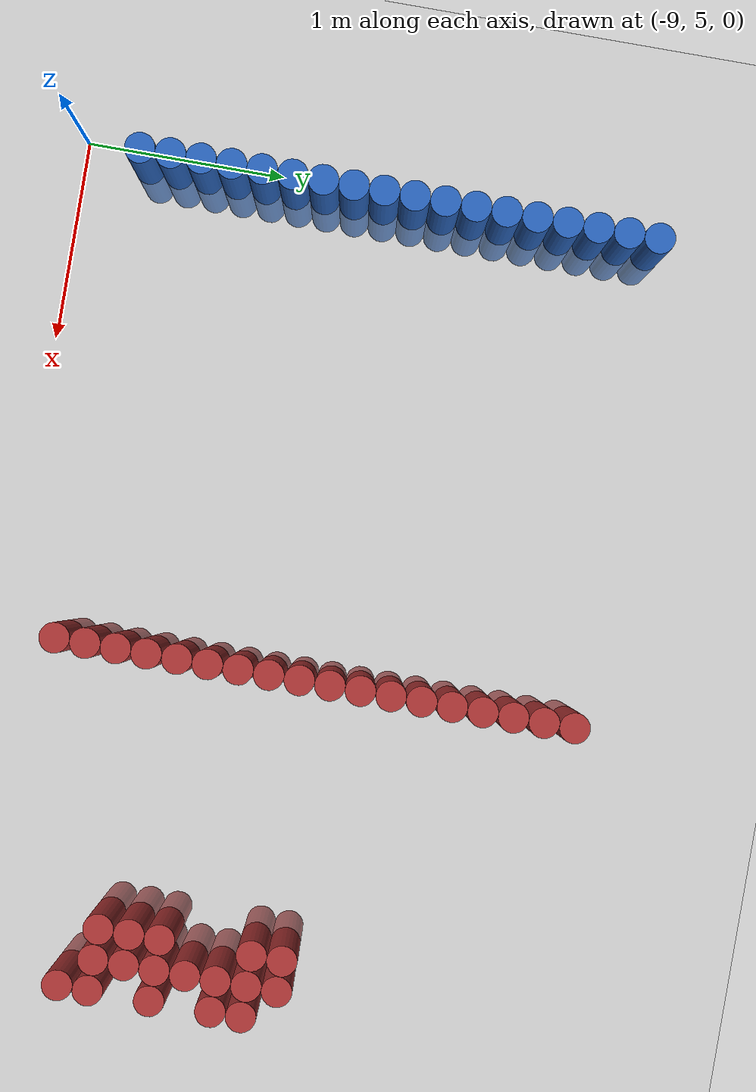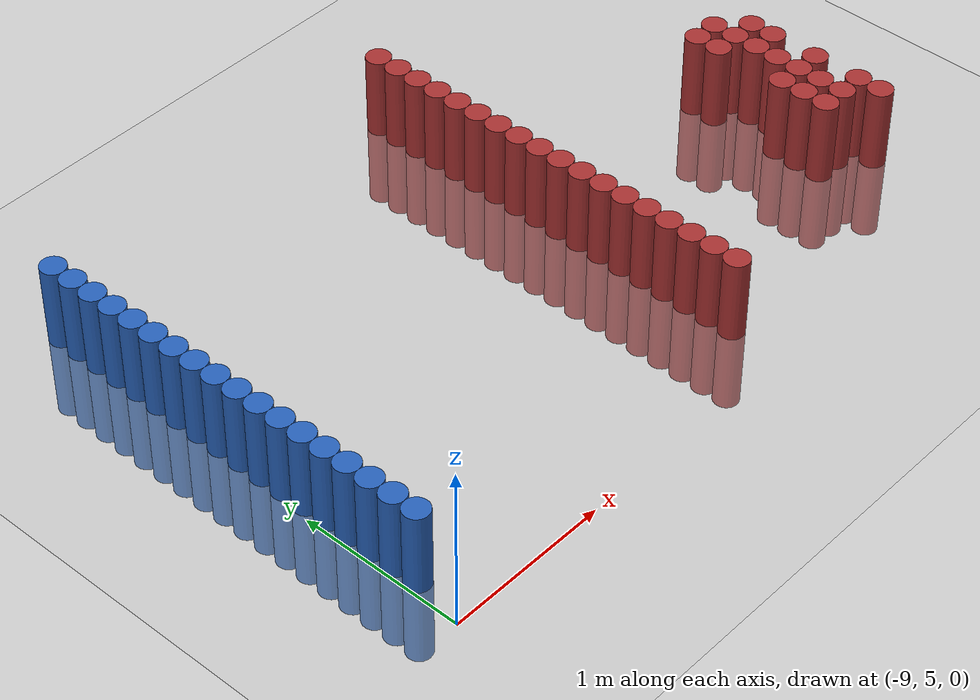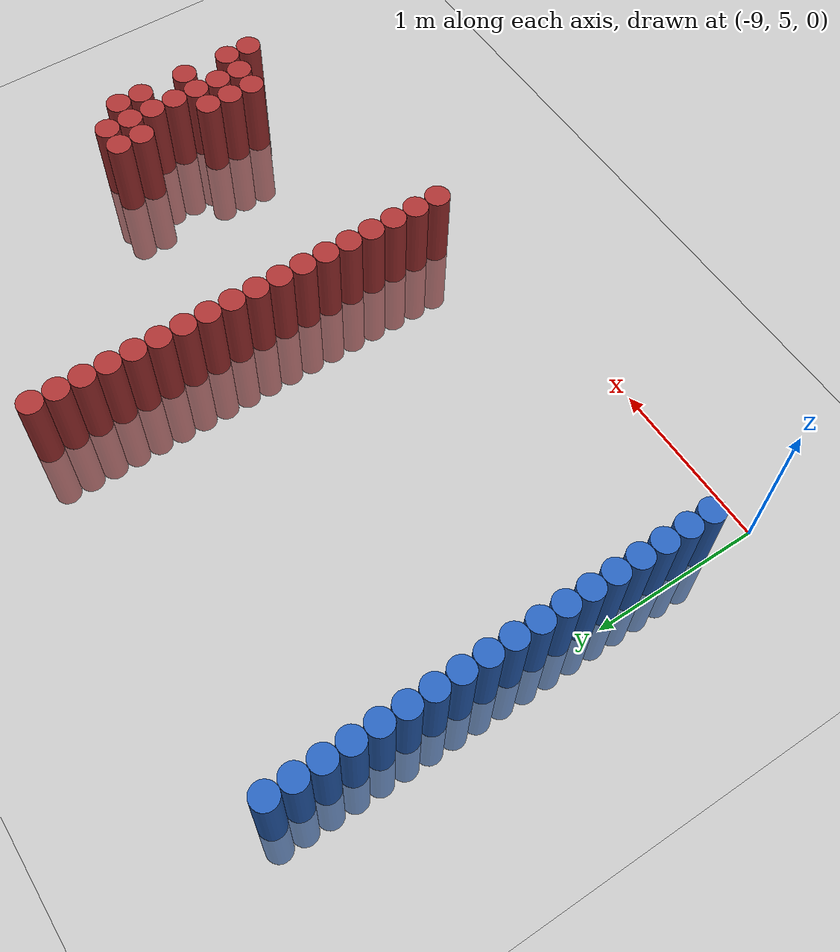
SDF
<sdf version="1.6">
 <world name="default">
  <model name="ground_plane">
   <static>1</static>
   <link name="link">
    <collision name="collision">
     <geometry><plane><normal>0 0 1</normal><size>100 100</size></plane></geometry>
     <surface><friction><ode><mu>100</mu><mu2>50</mu2></ode></friction></surface>
    </collision>
    <visual name="visual">
     <cast_shadows>0</cast_shadows>
     <geometry><plane><normal>0 0 1</normal><size>100 100</size></plane></geometry>
     <material>
      <script><uri>file://media/materials/scripts/gazebo.material</uri><name>Gazebo/Grey</name></script>
     </material>
    </visual>
   </link>
  </model>
  <model name="unit_cylinder_126">
   <static>1</static>
   <pose>-8.925000 5.325000 0.000000 0.000000 0.000000 0.000000</pose>
   <link name="link">
    <inertial>
     <mass>1</mass>
     <inertia><ixx>0.145833</ixx><ixy>0</ixy><ixz>0</ixz><iyy>0.145833</iyy><iyz>0</iyz><izz>0.125</izz></inertia>
    </inertial>
    <collision name="collision">
     <geometry><cylinder><radius>0.075000</radius><length>1</length></cylinder></geometry>
    </collision>
    <visual name="visual">
     <geometry><cylinder><radius>0.075000</radius><length>1</length></cylinder></geometry>
     <material>
      <ambient>0.152000 0.379000 0.720000 1</ambient>
      <diffuse>0.152000 0.379000 0.720000 1</diffuse>
     </material>
     <material>
      <script><name>Gazebo/Grey</name><uri>file://media/materials/scripts/gazebo.material</uri></script>
     </material>
    </visual>
   </link>
  </model>
  <model name="unit_cylinder_127">
   <static>1</static>
   <pose>-8.925000 5.475000 0.000000 0.000000 0.000000 0.000000</pose>
   <link name="link">
    <inertial>
     <mass>1</mass>
     <inertia><ixx>0.145833</ixx><ixy>0</ixy><ixz>0</ixz><iyy>0.145833</iyy><iyz>0</iyz><izz>0.125</izz></inertia>
    </inertial>
    <collision name="collision">
     <geometry><cylinder><radius>0.075000</radius><length>1</length></cylinder></geometry>
    </collision>
    <visual name="visual">
     <geometry><cylinder><radius>0.075000</radius><length>1</length></cylinder></geometry>
     <material>
      <ambient>0.152000 0.379000 0.720000 1</ambient>
      <diffuse>0.152000 0.379000 0.720000 1</diffuse>
     </material>
     <material>
      <script><name>Gazebo/Grey</name><uri>file://media/materials/scripts/gazebo.material</uri></script>
     </material>
    </visual>
   </link>
  </model>
  <model name="unit_cylinder_128">
   <static>1</static>
   <pose>-8.925000 5.625000 0.000000 0.000000 0.000000 0.000000</pose>
   <link name="link">
    <inertial>
     <mass>1</mass>
     <inertia><ixx>0.145833</ixx><ixy>0</ixy><ixz>0</ixz><iyy>0.145833</iyy><iyz>0</iyz><izz>0.125</izz></inertia>
    </inertial>
    <collision name="collision">
     <geometry><cylinder><radius>0.075000</radius><length>1</length></cylinder></geometry>
    </collision>
    <visual name="visual">
     <geometry><cylinder><radius>0.075000</radius><length>1</length></cylinder></geometry>
     <material>
      <ambient>0.152000 0.379000 0.720000 1</ambient>
      <diffuse>0.152000 0.379000 0.720000 1</diffuse>
     </material>
     <material>
      <script><name>Gazebo/Grey</name><uri>file://media/materials/scripts/gazebo.material</uri></script>
     </material>
    </visual>
   </link>
  </model>
  <model name="unit_cylinder_129">
   <static>1</static>
   <pose>-8.925000 5.775000 0.000000 0.000000 0.000000 0.000000</pose>
   <link name="link">
    <inertial>
     <mass>1</mass>
     <inertia><ixx>0.145833</ixx><ixy>0</ixy><ixz>0</ixz><iyy>0.145833</iyy><iyz>0</iyz><izz>0.125</izz></inertia>
    </inertial>
    <collision name="collision">
     <geometry><cylinder><radius>0.075000</radius><length>1</length></cylinder></geometry>
    </collision>
    <visual name="visual">
     <geometry><cylinder><radius>0.075000</radius><length>1</length></cylinder></geometry>
     <material>
      <ambient>0.152000 0.379000 0.720000 1</ambient>
      <diffuse>0.152000 0.379000 0.720000 1</diffuse>
     </material>
     <material>
      <script><name>Gazebo/Grey</name><uri>file://media/materials/scripts/gazebo.material</uri></script>
     </material>
    </visual>
   </link>
  </model>
  <model name="unit_cylinder_130">
   <static>1</static>
   <pose>-8.925000 5.925000 0.000000 0.000000 0.000000 0.000000</pose>
   <link name="link">
    <inertial>
     <mass>1</mass>
     <inertia><ixx>0.145833</ixx><ixy>0</ixy><ixz>0</ixz><iyy>0.145833</iyy><iyz>0</iyz><izz>0.125</izz></inertia>
    </inertial>
    <collision name="collision">
     <geometry><cylinder><radius>0.075000</radius><length>1</length></cylinder></geometry>
    </collision>
    <visual name="visual">
     <geometry><cylinder><radius>0.075000</radius><length>1</length></cylinder></geometry>
     <material>
      <ambient>0.152000 0.379000 0.720000 1</ambient>
      <diffuse>0.152000 0.379000 0.720000 1</diffuse>
     </material>
     <material>
      <script><name>Gazebo/Grey</name><uri>file://media/materials/scripts/gazebo.material</uri></script>
     </material>
    </visual>
   </link>
  </model>
  <model name="unit_cylinder_131">
   <static>1</static>
   <pose>-8.925000 6.075000 0.000000 0.000000 0.000000 0.000000</pose>
   <link name="link">
    <inertial>
     <mass>1</mass>
     <inertia><ixx>0.145833</ixx><ixy>0</ixy><ixz>0</ixz><iyy>0.145833</iyy><iyz>0</iyz><izz>0.125</izz></inertia>
    </inertial>
    <collision name="collision">
     <geometry><cylinder><radius>0.075000</radius><length>1</length></cylinder></geometry>
    </collision>
    <visual name="visual">
     <geometry><cylinder><radius>0.075000</radius><length>1</length></cylinder></geometry>
     <material>
      <ambient>0.152000 0.379000 0.720000 1</ambient>
      <diffuse>0.152000 0.379000 0.720000 1</diffuse>
     </material>
     <material>
      <script><name>Gazebo/Grey</name><uri>file://media/materials/scripts/gazebo.material</uri></script>
     </material>
    </visual>
   </link>
  </model>
  <model name="unit_cylinder_132">
   <static>1</static>
   <pose>-8.925000 6.225000 0.000000 0.000000 0.000000 0.000000</pose>
   <link name="link">
    <inertial>
     <mass>1</mass>
     <inertia><ixx>0.145833</ixx><ixy>0</ixy><ixz>0</ixz><iyy>0.145833</iyy><iyz>0</iyz><izz>0.125</izz></inertia>
    </inertial>
    <collision name="collision">
     <geometry><cylinder><radius>0.075000</radius><length>1</length></cylinder></geometry>
    </collision>
    <visual name="visual">
     <geometry><cylinder><radius>0.075000</radius><length>1</length></cylinder></geometry>
     <material>
      <ambient>0.152000 0.379000 0.720000 1</ambient>
      <diffuse>0.152000 0.379000 0.720000 1</diffuse>
     </material>
     <material>
      <script><name>Gazebo/Grey</name><uri>file://media/materials/scripts/gazebo.material</uri></script>
     </material>
    </visual>
   </link>
  </model>
  <model name="unit_cylinder_133">
   <static>1</static>
   <pose>-8.925000 6.375000 0.000000 0.000000 0.000000 0.000000</pose>
   <link name="link">
    <inertial>
     <mass>1</mass>
     <inertia><ixx>0.145833</ixx><ixy>0</ixy><ixz>0</ixz><iyy>0.145833</iyy><iyz>0</iyz><izz>0.125</izz></inertia>
    </inertial>
    <collision name="collision">
     <geometry><cylinder><radius>0.075000</radius><length>1</length></cylinder></geometry>
    </collision>
    <visual name="visual">
     <geometry><cylinder><radius>0.075000</radius><length>1</length></cylinder></geometry>
     <material>
      <ambient>0.152000 0.379000 0.720000 1</ambient>
      <diffuse>0.152000 0.379000 0.720000 1</diffuse>
     </material>
     <material>
      <script><name>Gazebo/Grey</name><uri>file://media/materials/scripts/gazebo.material</uri></script>
     </material>
    </visual>
   </link>
  </model>
  <model name="unit_cylinder_134">
   <static>1</static>
   <pose>-8.925000 6.525000 0.000000 0.000000 0.000000 0.000000</pose>
   <link name="link">
    <inertial>
     <mass>1</mass>
     <inertia><ixx>0.145833</ixx><ixy>0</ixy><ixz>0</ixz><iyy>0.145833</iyy><iyz>0</iyz><izz>0.125</izz></inertia>
    </inertial>
    <collision name="collision">
     <geometry><cylinder><radius>0.075000</radius><length>1</length></cylinder></geometry>
    </collision>
    <visual name="visual">
     <geometry><cylinder><radius>0.075000</radius><length>1</length></cylinder></geometry>
     <material>
      <ambient>0.152000 0.379000 0.720000 1</ambient>
      <diffuse>0.152000 0.379000 0.720000 1</diffuse>
     </material>
     <material>
      <script><name>Gazebo/Grey</name><uri>file://media/materials/scripts/gazebo.material</uri></script>
     </material>
    </visual>
   </link>
  </model>
  <model name="unit_cylinder_135">
   <static>1</static>
   <pose>-8.925000 6.675000 0.000000 0.000000 0.000000 0.000000</pose>
   <link name="link">
    <inertial>
     <mass>1</mass>
     <inertia><ixx>0.145833</ixx><ixy>0</ixy><ixz>0</ixz><iyy>0.145833</iyy><iyz>0</iyz><izz>0.125</izz></inertia>
    </inertial>
    <collision name="collision">
     <geometry><cylinder><radius>0.075000</radius><length>1</length></cylinder></geometry>
    </collision>
    <visual name="visual">
     <geometry><cylinder><radius>0.075000</radius><length>1</length></cylinder></geometry>
     <material>
      <ambient>0.152000 0.379000 0.720000 1</ambient>
      <diffuse>0.152000 0.379000 0.720000 1</diffuse>
     </material>
     <material>
      <script><name>Gazebo/Grey</name><uri>file://media/materials/scripts/gazebo.material</uri></script>
     </material>
    </visual>
   </link>
  </model>
  <model name="unit_cylinder_136">
   <static>1</static>
   <pose>-8.925000 6.825000 0.000000 0.000000 0.000000 0.000000</pose>
   <link name="link">
    <inertial>
     <mass>1</mass>
     <inertia><ixx>0.145833</ixx><ixy>0</ixy><ixz>0</ixz><iyy>0.145833</iyy><iyz>0</iyz><izz>0.125</izz></inertia>
    </inertial>
    <collision name="collision">
     <geometry><cylinder><radius>0.075000</radius><length>1</length></cylinder></geometry>
    </collision>
    <visual name="visual">
     <geometry><cylinder><radius>0.075000</radius><length>1</length></cylinder></geometry>
     <material>
      <ambient>0.152000 0.379000 0.720000 1</ambient>
      <diffuse>0.152000 0.379000 0.720000 1</diffuse>
     </material>
     <material>
      <script><name>Gazebo/Grey</name><uri>file://media/materials/scripts/gazebo.material</uri></script>
     </material>
    </visual>
   </link>
  </model>
  <model name="unit_cylinder_137">
   <static>1</static>
   <pose>-8.925000 6.975000 0.000000 0.000000 0.000000 0.000000</pose>
   <link name="link">
    <inertial>
     <mass>1</mass>
     <inertia><ixx>0.145833</ixx><ixy>0</ixy><ixz>0</ixz><iyy>0.145833</iyy><iyz>0</iyz><izz>0.125</izz></inertia>
    </inertial>
    <collision name="collision">
     <geometry><cylinder><radius>0.075000</radius><length>1</length></cylinder></geometry>
    </collision>
    <visual name="visual">
     <geometry><cylinder><radius>0.075000</radius><length>1</length></cylinder></geometry>
     <material>
      <ambient>0.152000 0.379000 0.720000 1</ambient>
      <diffuse>0.152000 0.379000 0.720000 1</diffuse>
     </material>
     <material>
      <script><name>Gazebo/Grey</name><uri>file://media/materials/scripts/gazebo.material</uri></script>
     </material>
    </visual>
   </link>
  </model>
  <model name="unit_cylinder_138">
   <static>1</static>
   <pose>-8.925000 7.125000 0.000000 0.000000 0.000000 0.000000</pose>
   <link name="link">
    <inertial>
     <mass>1</mass>
     <inertia><ixx>0.145833</ixx><ixy>0</ixy><ixz>0</ixz><iyy>0.145833</iyy><iyz>0</iyz><izz>0.125</izz></inertia>
    </inertial>
    <collision name="collision">
     <geometry><cylinder><radius>0.075000</radius><length>1</length></cylinder></geometry>
    </collision>
    <visual name="visual">
     <geometry><cylinder><radius>0.075000</radius><length>1</length></cylinder></geometry>
     <material>
      <ambient>0.152000 0.379000 0.720000 1</ambient>
      <diffuse>0.152000 0.379000 0.720000 1</diffuse>
     </material>
     <material>
      <script><name>Gazebo/Grey</name><uri>file://media/materials/scripts/gazebo.material</uri></script>
     </material>
    </visual>
   </link>
  </model>
  <model name="unit_cylinder_139">
   <static>1</static>
   <pose>-8.925000 7.275000 0.000000 0.000000 0.000000 0.000000</pose>
   <link name="link">
    <inertial>
     <mass>1</mass>
     <inertia><ixx>0.145833</ixx><ixy>0</ixy><ixz>0</ixz><iyy>0.145833</iyy><iyz>0</iyz><izz>0.125</izz></inertia>
    </inertial>
    <collision name="collision">
     <geometry><cylinder><radius>0.075000</radius><length>1</length></cylinder></geometry>
    </collision>
    <visual name="visual">
     <geometry><cylinder><radius>0.075000</radius><length>1</length></cylinder></geometry>
     <material>
      <ambient>0.152000 0.379000 0.720000 1</ambient>
      <diffuse>0.152000 0.379000 0.720000 1</diffuse>
     </material>
     <material>
      <script><name>Gazebo/Grey</name><uri>file://media/materials/scripts/gazebo.material</uri></script>
     </material>
    </visual>
   </link>
  </model>
  <model name="unit_cylinder_140">
   <static>1</static>
   <pose>-8.925000 7.425000 0.000000 0.000000 0.000000 0.000000</pose>
   <link name="link">
    <inertial>
     <mass>1</mass>
     <inertia><ixx>0.145833</ixx><ixy>0</ixy><ixz>0</ixz><iyy>0.145833</iyy><iyz>0</iyz><izz>0.125</izz></inertia>
    </inertial>
    <collision name="collision">
     <geometry><cylinder><radius>0.075000</radius><length>1</length></cylinder></geometry>
    </collision>
    <visual name="visual">
     <geometry><cylinder><radius>0.075000</radius><length>1</length></cylinder></geometry>
     <material>
      <ambient>0.152000 0.379000 0.720000 1</ambient>
      <diffuse>0.152000 0.379000 0.720000 1</diffuse>
     </material>
     <material>
      <script><name>Gazebo/Grey</name><uri>file://media/materials/scripts/gazebo.material</uri></script>
     </material>
    </visual>
   </link>
  </model>
  <model name="unit_cylinder_141">
   <static>1</static>
   <pose>-8.925000 7.575000 0.000000 0.000000 0.000000 0.000000</pose>
   <link name="link">
    <inertial>
     <mass>1</mass>
     <inertia><ixx>0.145833</ixx><ixy>0</ixy><ixz>0</ixz><iyy>0.145833</iyy><iyz>0</iyz><izz>0.125</izz></inertia>
    </inertial>
    <collision name="collision">
     <geometry><cylinder><radius>0.075000</radius><length>1</length></cylinder></geometry>
    </collision>
    <visual name="visual">
     <geometry><cylinder><radius>0.075000</radius><length>1</length></cylinder></geometry>
     <material>
      <ambient>0.152000 0.379000 0.720000 1</ambient>
      <diffuse>0.152000 0.379000 0.720000 1</diffuse>
     </material>
     <material>
      <script><name>Gazebo/Grey</name><uri>file://media/materials/scripts/gazebo.material</uri></script>
     </material>
    </visual>
   </link>
  </model>
  <model name="unit_cylinder_142">
   <static>1</static>
   <pose>-8.925000 7.725000 0.000000 0.000000 0.000000 0.000000</pose>
   <link name="link">
    <inertial>
     <mass>1</mass>
     <inertia><ixx>0.145833</ixx><ixy>0</ixy><ixz>0</ixz><iyy>0.145833</iyy><iyz>0</iyz><izz>0.125</izz></inertia>
    </inertial>
    <collision name="collision">
     <geometry><cylinder><radius>0.075000</radius><length>1</length></cylinder></geometry>
    </collision>
    <visual name="visual">
     <geometry><cylinder><radius>0.075000</radius><length>1</length></cylinder></geometry>
     <material>
      <ambient>0.152000 0.379000 0.720000 1</ambient>
      <diffuse>0.152000 0.379000 0.720000 1</diffuse>
     </material>
     <material>
      <script><name>Gazebo/Grey</name><uri>file://media/materials/scripts/gazebo.material</uri></script>
     </material>
    </visual>
   </link>
  </model>
  <model name="unit_cylinder_143">
   <static>1</static>
   <pose>-8.925000 7.875000 0.000000 0.000000 0.000000 0.000000</pose>
   <link name="link">
    <inertial>
     <mass>1</mass>
     <inertia><ixx>0.145833</ixx><ixy>0</ixy><ixz>0</ixz><iyy>0.145833</iyy><iyz>0</iyz><izz>0.125</izz></inertia>
    </inertial>
    <collision name="collision">
     <geometry><cylinder><radius>0.075000</radius><length>1</length></cylinder></geometry>
    </collision>
    <visual name="visual">
     <geometry><cylinder><radius>0.075000</radius><length>1</length></cylinder></geometry>
     <material>
      <ambient>0.152000 0.379000 0.720000 1</ambient>
      <diffuse>0.152000 0.379000 0.720000 1</diffuse>
     </material>
     <material>
      <script><name>Gazebo/Grey</name><uri>file://media/materials/scripts/gazebo.material</uri></script>
     </material>
    </visual>
   </link>
  </model>
  <model name="unit_cylinder_186">
   <static>1</static>
   <pose>-6.525000 5.325000 0.000000 0.000000 0.000000 0.000000</pose>
   <link name="link">
    <inertial>
     <mass>1</mass>
     <inertia><ixx>0.145833</ixx><ixy>0</ixy><ixz>0</ixz><iyy>0.145833</iyy><iyz>0</iyz><izz>0.125</izz></inertia>
    </inertial>
    <collision name="collision">
     <geometry><cylinder><radius>0.075000</radius><length>1</length></cylinder></geometry>
    </collision>
    <visual name="visual">
     <geometry><cylinder><radius>0.075000</radius><length>1</length></cylinder></geometry>
     <material>
      <ambient>0.648000 0.192000 0.192000 1</ambient>
      <diffuse>0.648000 0.192000 0.192000 1</diffuse>
     </material>
     <material>
      <script><name>Gazebo/Grey</name><uri>file://media/materials/scripts/gazebo.material</uri></script>
     </material>
    </visual>
   </link>
  </model>
  <model name="unit_cylinder_187">
   <static>1</static>
   <pose>-6.525000 5.475000 0.000000 0.000000 0.000000 0.000000</pose>
   <link name="link">
    <inertial>
     <mass>1</mass>
     <inertia><ixx>0.145833</ixx><ixy>0</ixy><ixz>0</ixz><iyy>0.145833</iyy><iyz>0</iyz><izz>0.125</izz></inertia>
    </inertial>
    <collision name="collision">
     <geometry><cylinder><radius>0.075000</radius><length>1</length></cylinder></geometry>
    </collision>
    <visual name="visual">
     <geometry><cylinder><radius>0.075000</radius><length>1</length></cylinder></geometry>
     <material>
      <ambient>0.648000 0.192000 0.192000 1</ambient>
      <diffuse>0.648000 0.192000 0.192000 1</diffuse>
     </material>
     <material>
      <script><name>Gazebo/Grey</name><uri>file://media/materials/scripts/gazebo.material</uri></script>
     </material>
    </visual>
   </link>
  </model>
  <model name="unit_cylinder_188">
   <static>1</static>
   <pose>-6.525000 5.625000 0.000000 0.000000 0.000000 0.000000</pose>
   <link name="link">
    <inertial>
     <mass>1</mass>
     <inertia><ixx>0.145833</ixx><ixy>0</ixy><ixz>0</ixz><iyy>0.145833</iyy><iyz>0</iyz><izz>0.125</izz></inertia>
    </inertial>
    <collision name="collision">
     <geometry><cylinder><radius>0.075000</radius><length>1</length></cylinder></geometry>
    </collision>
    <visual name="visual">
     <geometry><cylinder><radius>0.075000</radius><length>1</length></cylinder></geometry>
     <material>
      <ambient>0.648000 0.192000 0.192000 1</ambient>
      <diffuse>0.648000 0.192000 0.192000 1</diffuse>
     </material>
     <material>
      <script><name>Gazebo/Grey</name><uri>file://media/materials/scripts/gazebo.material</uri></script>
     </material>
    </visual>
   </link>
  </model>
  <model name="unit_cylinder_189">
   <static>1</static>
   <pose>-6.525000 5.775000 0.000000 0.000000 0.000000 0.000000</pose>
   <link name="link">
    <inertial>
     <mass>1</mass>
     <inertia><ixx>0.145833</ixx><ixy>0</ixy><ixz>0</ixz><iyy>0.145833</iyy><iyz>0</iyz><izz>0.125</izz></inertia>
    </inertial>
    <collision name="collision">
     <geometry><cylinder><radius>0.075000</radius><length>1</length></cylinder></geometry>
    </collision>
    <visual name="visual">
     <geometry><cylinder><radius>0.075000</radius><length>1</length></cylinder></geometry>
     <material>
      <ambient>0.648000 0.192000 0.192000 1</ambient>
      <diffuse>0.648000 0.192000 0.192000 1</diffuse>
     </material>
     <material>
      <script><name>Gazebo/Grey</name><uri>file://media/materials/scripts/gazebo.material</uri></script>
     </material>
    </visual>
   </link>
  </model>
  <model name="unit_cylinder_190">
   <static>1</static>
   <pose>-6.525000 5.925000 0.000000 0.000000 0.000000 0.000000</pose>
   <link name="link">
    <inertial>
     <mass>1</mass>
     <inertia><ixx>0.145833</ixx><ixy>0</ixy><ixz>0</ixz><iyy>0.145833</iyy><iyz>0</iyz><izz>0.125</izz></inertia>
    </inertial>
    <collision name="collision">
     <geometry><cylinder><radius>0.075000</radius><length>1</length></cylinder></geometry>
    </collision>
    <visual name="visual">
     <geometry><cylinder><radius>0.075000</radius><length>1</length></cylinder></geometry>
     <material>
      <ambient>0.648000 0.192000 0.192000 1</ambient>
      <diffuse>0.648000 0.192000 0.192000 1</diffuse>
     </material>
     <material>
      <script><name>Gazebo/Grey</name><uri>file://media/materials/scripts/gazebo.material</uri></script>
     </material>
    </visual>
   </link>
  </model>
  <model name="unit_cylinder_191">
   <static>1</static>
   <pose>-6.525000 6.075000 0.000000 0.000000 0.000000 0.000000</pose>
   <link name="link">
    <inertial>
     <mass>1</mass>
     <inertia><ixx>0.145833</ixx><ixy>0</ixy><ixz>0</ixz><iyy>0.145833</iyy><iyz>0</iyz><izz>0.125</izz></inertia>
    </inertial>
    <collision name="collision">
     <geometry><cylinder><radius>0.075000</radius><length>1</length></cylinder></geometry>
    </collision>
    <visual name="visual">
     <geometry><cylinder><radius>0.075000</radius><length>1</length></cylinder></geometry>
     <material>
      <ambient>0.648000 0.192000 0.192000 1</ambient>
      <diffuse>0.648000 0.192000 0.192000 1</diffuse>
     </material>
     <material>
      <script><name>Gazebo/Grey</name><uri>file://media/materials/scripts/gazebo.material</uri></script>
     </material>
    </visual>
   </link>
  </model>
  <model name="unit_cylinder_192">
   <static>1</static>
   <pose>-6.525000 6.225000 0.000000 0.000000 0.000000 0.000000</pose>
   <link name="link">
    <inertial>
     <mass>1</mass>
     <inertia><ixx>0.145833</ixx><ixy>0</ixy><ixz>0</ixz><iyy>0.145833</iyy><iyz>0</iyz><izz>0.125</izz></inertia>
    </inertial>
    <collision name="collision">
     <geometry><cylinder><radius>0.075000</radius><length>1</length></cylinder></geometry>
    </collision>
    <visual name="visual">
     <geometry><cylinder><radius>0.075000</radius><length>1</length></cylinder></geometry>
     <material>
      <ambient>0.648000 0.192000 0.192000 1</ambient>
      <diffuse>0.648000 0.192000 0.192000 1</diffuse>
     </material>
     <material>
      <script><name>Gazebo/Grey</name><uri>file://media/materials/scripts/gazebo.material</uri></script>
     </material>
    </visual>
   </link>
  </model>
  <model name="unit_cylinder_193">
   <static>1</static>
   <pose>-6.525000 6.375000 0.000000 0.000000 0.000000 0.000000</pose>
   <link name="link">
    <inertial>
     <mass>1</mass>
     <inertia><ixx>0.145833</ixx><ixy>0</ixy><ixz>0</ixz><iyy>0.145833</iyy><iyz>0</iyz><izz>0.125</izz></inertia>
    </inertial>
    <collision name="collision">
     <geometry><cylinder><radius>0.075000</radius><length>1</length></cylinder></geometry>
    </collision>
    <visual name="visual">
     <geometry><cylinder><radius>0.075000</radius><length>1</length></cylinder></geometry>
     <material>
      <ambient>0.648000 0.192000 0.192000 1</ambient>
      <diffuse>0.648000 0.192000 0.192000 1</diffuse>
     </material>
     <material>
      <script><name>Gazebo/Grey</name><uri>file://media/materials/scripts/gazebo.material</uri></script>
     </material>
    </visual>
   </link>
  </model>
  <model name="unit_cylinder_194">
   <static>1</static>
   <pose>-6.525000 6.525000 0.000000 0.000000 0.000000 0.000000</pose>
   <link name="link">
    <inertial>
     <mass>1</mass>
     <inertia><ixx>0.145833</ixx><ixy>0</ixy><ixz>0</ixz><iyy>0.145833</iyy><iyz>0</iyz><izz>0.125</izz></inertia>
    </inertial>
    <collision name="collision">
     <geometry><cylinder><radius>0.075000</radius><length>1</length></cylinder></geometry>
    </collision>
    <visual name="visual">
     <geometry><cylinder><radius>0.075000</radius><length>1</length></cylinder></geometry>
     <material>
      <ambient>0.648000 0.192000 0.192000 1</ambient>
      <diffuse>0.648000 0.192000 0.192000 1</diffuse>
     </material>
     <material>
      <script><name>Gazebo/Grey</name><uri>file://media/materials/scripts/gazebo.material</uri></script>
     </material>
    </visual>
   </link>
  </model>
  <model name="unit_cylinder_195">
   <static>1</static>
   <pose>-6.525000 6.675000 0.000000 0.000000 0.000000 0.000000</pose>
   <link name="link">
    <inertial>
     <mass>1</mass>
     <inertia><ixx>0.145833</ixx><ixy>0</ixy><ixz>0</ixz><iyy>0.145833</iyy><iyz>0</iyz><izz>0.125</izz></inertia>
    </inertial>
    <collision name="collision">
     <geometry><cylinder><radius>0.075000</radius><length>1</length></cylinder></geometry>
    </collision>
    <visual name="visual">
     <geometry><cylinder><radius>0.075000</radius><length>1</length></cylinder></geometry>
     <material>
      <ambient>0.648000 0.192000 0.192000 1</ambient>
      <diffuse>0.648000 0.192000 0.192000 1</diffuse>
     </material>
     <material>
      <script><name>Gazebo/Grey</name><uri>file://media/materials/scripts/gazebo.material</uri></script>
     </material>
    </visual>
   </link>
  </model>
  <model name="unit_cylinder_196">
   <static>1</static>
   <pose>-6.525000 6.825000 0.000000 0.000000 0.000000 0.000000</pose>
   <link name="link">
    <inertial>
     <mass>1</mass>
     <inertia><ixx>0.145833</ixx><ixy>0</ixy><ixz>0</ixz><iyy>0.145833</iyy><iyz>0</iyz><izz>0.125</izz></inertia>
    </inertial>
    <collision name="collision">
     <geometry><cylinder><radius>0.075000</radius><length>1</length></cylinder></geometry>
    </collision>
    <visual name="visual">
     <geometry><cylinder><radius>0.075000</radius><length>1</length></cylinder></geometry>
     <material>
      <ambient>0.648000 0.192000 0.192000 1</ambient>
      <diffuse>0.648000 0.192000 0.192000 1</diffuse>
     </material>
     <material>
      <script><name>Gazebo/Grey</name><uri>file://media/materials/scripts/gazebo.material</uri></script>
     </material>
    </visual>
   </link>
  </model>
  <model name="unit_cylinder_197">
   <static>1</static>
   <pose>-6.525000 6.975000 0.000000 0.000000 0.000000 0.000000</pose>
   <link name="link">
    <inertial>
     <mass>1</mass>
     <inertia><ixx>0.145833</ixx><ixy>0</ixy><ixz>0</ixz><iyy>0.145833</iyy><iyz>0</iyz><izz>0.125</izz></inertia>
    </inertial>
    <collision name="collision">
     <geometry><cylinder><radius>0.075000</radius><length>1</length></cylinder></geometry>
    </collision>
    <visual name="visual">
     <geometry><cylinder><radius>0.075000</radius><length>1</length></cylinder></geometry>
     <material>
      <ambient>0.648000 0.192000 0.192000 1</ambient>
      <diffuse>0.648000 0.192000 0.192000 1</diffuse>
     </material>
     <material>
      <script><name>Gazebo/Grey</name><uri>file://media/materials/scripts/gazebo.material</uri></script>
     </material>
    </visual>
   </link>
  </model>
  <model name="unit_cylinder_198">
   <static>1</static>
   <pose>-6.525000 7.125000 0.000000 0.000000 0.000000 0.000000</pose>
   <link name="link">
    <inertial>
     <mass>1</mass>
     <inertia><ixx>0.145833</ixx><ixy>0</ixy><ixz>0</ixz><iyy>0.145833</iyy><iyz>0</iyz><izz>0.125</izz></inertia>
    </inertial>
    <collision name="collision">
     <geometry><cylinder><radius>0.075000</radius><length>1</length></cylinder></geometry>
    </collision>
    <visual name="visual">
     <geometry><cylinder><radius>0.075000</radius><length>1</length></cylinder></geometry>
     <material>
      <ambient>0.648000 0.192000 0.192000 1</ambient>
      <diffuse>0.648000 0.192000 0.192000 1</diffuse>
     </material>
     <material>
      <script><name>Gazebo/Grey</name><uri>file://media/materials/scripts/gazebo.material</uri></script>
     </material>
    </visual>
   </link>
  </model>
  <model name="unit_cylinder_199">
   <static>1</static>
   <pose>-6.525000 7.275000 0.000000 0.000000 0.000000 0.000000</pose>
   <link name="link">
    <inertial>
     <mass>1</mass>
     <inertia><ixx>0.145833</ixx><ixy>0</ixy><ixz>0</ixz><iyy>0.145833</iyy><iyz>0</iyz><izz>0.125</izz></inertia>
    </inertial>
    <collision name="collision">
     <geometry><cylinder><radius>0.075000</radius><length>1</length></cylinder></geometry>
    </collision>
    <visual name="visual">
     <geometry><cylinder><radius>0.075000</radius><length>1</length></cylinder></geometry>
     <material>
      <ambient>0.648000 0.192000 0.192000 1</ambient>
      <diffuse>0.648000 0.192000 0.192000 1</diffuse>
     </material>
     <material>
      <script><name>Gazebo/Grey</name><uri>file://media/materials/scripts/gazebo.material</uri></script>
     </material>
    </visual>
   </link>
  </model>
  <model name="unit_cylinder_200">
   <static>1</static>
   <pose>-6.525000 7.425000 0.000000 0.000000 0.000000 0.000000</pose>
   <link name="link">
    <inertial>
     <mass>1</mass>
     <inertia><ixx>0.145833</ixx><ixy>0</ixy><ixz>0</ixz><iyy>0.145833</iyy><iyz>0</iyz><izz>0.125</izz></inertia>
    </inertial>
    <collision name="collision">
     <geometry><cylinder><radius>0.075000</radius><length>1</length></cylinder></geometry>
    </collision>
    <visual name="visual">
     <geometry><cylinder><radius>0.075000</radius><length>1</length></cylinder></geometry>
     <material>
      <ambient>0.648000 0.192000 0.192000 1</ambient>
      <diffuse>0.648000 0.192000 0.192000 1</diffuse>
     </material>
     <material>
      <script><name>Gazebo/Grey</name><uri>file://media/materials/scripts/gazebo.material</uri></script>
     </material>
    </visual>
   </link>
  </model>
  <model name="unit_cylinder_201">
   <static>1</static>
   <pose>-6.525000 7.575000 0.000000 0.000000 0.000000 0.000000</pose>
   <link name="link">
    <inertial>
     <mass>1</mass>
     <inertia><ixx>0.145833</ixx><ixy>0</ixy><ixz>0</ixz><iyy>0.145833</iyy><iyz>0</iyz><izz>0.125</izz></inertia>
    </inertial>
    <collision name="collision">
     <geometry><cylinder><radius>0.075000</radius><length>1</length></cylinder></geometry>
    </collision>
    <visual name="visual">
     <geometry><cylinder><radius>0.075000</radius><length>1</length></cylinder></geometry>
     <material>
      <ambient>0.648000 0.192000 0.192000 1</ambient>
      <diffuse>0.648000 0.192000 0.192000 1</diffuse>
     </material>
     <material>
      <script><name>Gazebo/Grey</name><uri>file://media/materials/scripts/gazebo.material</uri></script>
     </material>
    </visual>
   </link>
  </model>
  <model name="unit_cylinder_202">
   <static>1</static>
   <pose>-6.525000 7.725000 0.000000 0.000000 0.000000 0.000000</pose>
   <link name="link">
    <inertial>
     <mass>1</mass>
     <inertia><ixx>0.145833</ixx><ixy>0</ixy><ixz>0</ixz><iyy>0.145833</iyy><iyz>0</iyz><izz>0.125</izz></inertia>
    </inertial>
    <collision name="collision">
     <geometry><cylinder><radius>0.075000</radius><length>1</length></cylinder></geometry>
    </collision>
    <visual name="visual">
     <geometry><cylinder><radius>0.075000</radius><length>1</length></cylinder></geometry>
     <material>
      <ambient>0.648000 0.192000 0.192000 1</ambient>
      <diffuse>0.648000 0.192000 0.192000 1</diffuse>
     </material>
     <material>
      <script><name>Gazebo/Grey</name><uri>file://media/materials/scripts/gazebo.material</uri></script>
     </material>
    </visual>
   </link>
  </model>
  <model name="unit_cylinder_203">
   <static>1</static>
   <pose>-6.525000 7.875000 0.000000 0.000000 0.000000 0.000000</pose>
   <link name="link">
    <inertial>
     <mass>1</mass>
     <inertia><ixx>0.145833</ixx><ixy>0</ixy><ixz>0</ixz><iyy>0.145833</iyy><iyz>0</iyz><izz>0.125</izz></inertia>
    </inertial>
    <collision name="collision">
     <geometry><cylinder><radius>0.075000</radius><length>1</length></cylinder></geometry>
    </collision>
    <visual name="visual">
     <geometry><cylinder><radius>0.075000</radius><length>1</length></cylinder></geometry>
     <material>
      <ambient>0.648000 0.192000 0.192000 1</ambient>
      <diffuse>0.648000 0.192000 0.192000 1</diffuse>
     </material>
     <material>
      <script><name>Gazebo/Grey</name><uri>file://media/materials/scripts/gazebo.material</uri></script>
     </material>
    </visual>
   </link>
  </model>
  <model name="unit_cylinder_215">
   <static>1</static>
   <pose>-5.175000 5.775000 0.000000 0.000000 0.000000 0.000000</pose>
   <link name="link">
    <inertial>
     <mass>1</mass>
     <inertia><ixx>0.145833</ixx><ixy>0</ixy><ixz>0</ixz><iyy>0.145833</iyy><iyz>0</iyz><izz>0.125</izz></inertia>
    </inertial>
    <collision name="collision">
     <geometry><cylinder><radius>0.075000</radius><length>1</length></cylinder></geometry>
    </collision>
    <visual name="visual">
     <geometry><cylinder><radius>0.075000</radius><length>1</length></cylinder></geometry>
     <material>
      <ambient>0.648000 0.192000 0.192000 1</ambient>
      <diffuse>0.648000 0.192000 0.192000 1</diffuse>
     </material>
     <material>
      <script><name>Gazebo/Grey</name><uri>file://media/materials/scripts/gazebo.material</uri></script>
     </material>
    </visual>
   </link>
  </model>
  <model name="unit_cylinder_216">
   <static>1</static>
   <pose>-5.175000 5.925000 0.000000 0.000000 0.000000 0.000000</pose>
   <link name="link">
    <inertial>
     <mass>1</mass>
     <inertia><ixx>0.145833</ixx><ixy>0</ixy><ixz>0</ixz><iyy>0.145833</iyy><iyz>0</iyz><izz>0.125</izz></inertia>
    </inertial>
    <collision name="collision">
     <geometry><cylinder><radius>0.075000</radius><length>1</length></cylinder></geometry>
    </collision>
    <visual name="visual">
     <geometry><cylinder><radius>0.075000</radius><length>1</length></cylinder></geometry>
     <material>
      <ambient>0.648000 0.192000 0.192000 1</ambient>
      <diffuse>0.648000 0.192000 0.192000 1</diffuse>
     </material>
     <material>
      <script><name>Gazebo/Grey</name><uri>file://media/materials/scripts/gazebo.material</uri></script>
     </material>
    </visual>
   </link>
  </model>
  <model name="unit_cylinder_217">
   <static>1</static>
   <pose>-5.175000 6.075000 0.000000 0.000000 0.000000 0.000000</pose>
   <link name="link">
    <inertial>
     <mass>1</mass>
     <inertia><ixx>0.145833</ixx><ixy>0</ixy><ixz>0</ixz><iyy>0.145833</iyy><iyz>0</iyz><izz>0.125</izz></inertia>
    </inertial>
    <collision name="collision">
     <geometry><cylinder><radius>0.075000</radius><length>1</length></cylinder></geometry>
    </collision>
    <visual name="visual">
     <geometry><cylinder><radius>0.075000</radius><length>1</length></cylinder></geometry>
     <material>
      <ambient>0.648000 0.192000 0.192000 1</ambient>
      <diffuse>0.648000 0.192000 0.192000 1</diffuse>
     </material>
     <material>
      <script><name>Gazebo/Grey</name><uri>file://media/materials/scripts/gazebo.material</uri></script>
     </material>
    </visual>
   </link>
  </model>
  <model name="unit_cylinder_218">
   <static>1</static>
   <pose>-5.175000 6.525000 0.000000 0.000000 0.000000 0.000000</pose>
   <link name="link">
    <inertial>
     <mass>1</mass>
     <inertia><ixx>0.145833</ixx><ixy>0</ixy><ixz>0</ixz><iyy>0.145833</iyy><iyz>0</iyz><izz>0.125</izz></inertia>
    </inertial>
    <collision name="collision">
     <geometry><cylinder><radius>0.075000</radius><length>1</length></cylinder></geometry>
    </collision>
    <visual name="visual">
     <geometry><cylinder><radius>0.075000</radius><length>1</length></cylinder></geometry>
     <material>
      <ambient>0.648000 0.192000 0.192000 1</ambient>
      <diffuse>0.648000 0.192000 0.192000 1</diffuse>
     </material>
     <material>
      <script><name>Gazebo/Grey</name><uri>file://media/materials/scripts/gazebo.material</uri></script>
     </material>
    </visual>
   </link>
  </model>
  <model name="unit_cylinder_219">
   <static>1</static>
   <pose>-5.175000 6.675000 0.000000 0.000000 0.000000 0.000000</pose>
   <link name="link">
    <inertial>
     <mass>1</mass>
     <inertia><ixx>0.145833</ixx><ixy>0</ixy><ixz>0</ixz><iyy>0.145833</iyy><iyz>0</iyz><izz>0.125</izz></inertia>
    </inertial>
    <collision name="collision">
     <geometry><cylinder><radius>0.075000</radius><length>1</length></cylinder></geometry>
    </collision>
    <visual name="visual">
     <geometry><cylinder><radius>0.075000</radius><length>1</length></cylinder></geometry>
     <material>
      <ambient>0.648000 0.192000 0.192000 1</ambient>
      <diffuse>0.648000 0.192000 0.192000 1</diffuse>
     </material>
     <material>
      <script><name>Gazebo/Grey</name><uri>file://media/materials/scripts/gazebo.material</uri></script>
     </material>
    </visual>
   </link>
  </model>
  <model name="unit_cylinder_226">
   <static>1</static>
   <pose>-5.025000 5.775000 0.000000 0.000000 0.000000 0.000000</pose>
   <link name="link">
    <inertial>
     <mass>1</mass>
     <inertia><ixx>0.145833</ixx><ixy>0</ixy><ixz>0</ixz><iyy>0.145833</iyy><iyz>0</iyz><izz>0.125</izz></inertia>
    </inertial>
    <collision name="collision">
     <geometry><cylinder><radius>0.075000</radius><length>1</length></cylinder></geometry>
    </collision>
    <visual name="visual">
     <geometry><cylinder><radius>0.075000</radius><length>1</length></cylinder></geometry>
     <material>
      <ambient>0.648000 0.192000 0.192000 1</ambient>
      <diffuse>0.648000 0.192000 0.192000 1</diffuse>
     </material>
     <material>
      <script><name>Gazebo/Grey</name><uri>file://media/materials/scripts/gazebo.material</uri></script>
     </material>
    </visual>
   </link>
  </model>
  <model name="unit_cylinder_227">
   <static>1</static>
   <pose>-5.025000 5.925000 0.000000 0.000000 0.000000 0.000000</pose>
   <link name="link">
    <inertial>
     <mass>1</mass>
     <inertia><ixx>0.145833</ixx><ixy>0</ixy><ixz>0</ixz><iyy>0.145833</iyy><iyz>0</iyz><izz>0.125</izz></inertia>
    </inertial>
    <collision name="collision">
     <geometry><cylinder><radius>0.075000</radius><length>1</length></cylinder></geometry>
    </collision>
    <visual name="visual">
     <geometry><cylinder><radius>0.075000</radius><length>1</length></cylinder></geometry>
     <material>
      <ambient>0.648000 0.192000 0.192000 1</ambient>
      <diffuse>0.648000 0.192000 0.192000 1</diffuse>
     </material>
     <material>
      <script><name>Gazebo/Grey</name><uri>file://media/materials/scripts/gazebo.material</uri></script>
     </material>
    </visual>
   </link>
  </model>
  <model name="unit_cylinder_228">
   <static>1</static>
   <pose>-5.025000 6.075000 0.000000 0.000000 0.000000 0.000000</pose>
   <link name="link">
    <inertial>
     <mass>1</mass>
     <inertia><ixx>0.145833</ixx><ixy>0</ixy><ixz>0</ixz><iyy>0.145833</iyy><iyz>0</iyz><izz>0.125</izz></inertia>
    </inertial>
    <collision name="collision">
     <geometry><cylinder><radius>0.075000</radius><length>1</length></cylinder></geometry>
    </collision>
    <visual name="visual">
     <geometry><cylinder><radius>0.075000</radius><length>1</length></cylinder></geometry>
     <material>
      <ambient>0.648000 0.192000 0.192000 1</ambient>
      <diffuse>0.648000 0.192000 0.192000 1</diffuse>
     </material>
     <material>
      <script><name>Gazebo/Grey</name><uri>file://media/materials/scripts/gazebo.material</uri></script>
     </material>
    </visual>
   </link>
  </model>
  <model name="unit_cylinder_229">
   <static>1</static>
   <pose>-5.025000 6.225000 0.000000 0.000000 0.000000 0.000000</pose>
   <link name="link">
    <inertial>
     <mass>1</mass>
     <inertia><ixx>0.145833</ixx><ixy>0</ixy><ixz>0</ixz><iyy>0.145833</iyy><iyz>0</iyz><izz>0.125</izz></inertia>
    </inertial>
    <collision name="collision">
     <geometry><cylinder><radius>0.075000</radius><length>1</length></cylinder></geometry>
    </collision>
    <visual name="visual">
     <geometry><cylinder><radius>0.075000</radius><length>1</length></cylinder></geometry>
     <material>
      <ambient>0.648000 0.192000 0.192000 1</ambient>
      <diffuse>0.648000 0.192000 0.192000 1</diffuse>
     </material>
     <material>
      <script><name>Gazebo/Grey</name><uri>file://media/materials/scripts/gazebo.material</uri></script>
     </material>
    </visual>
   </link>
  </model>
  <model name="unit_cylinder_230">
   <static>1</static>
   <pose>-5.025000 6.375000 0.000000 0.000000 0.000000 0.000000</pose>
   <link name="link">
    <inertial>
     <mass>1</mass>
     <inertia><ixx>0.145833</ixx><ixy>0</ixy><ixz>0</ixz><iyy>0.145833</iyy><iyz>0</iyz><izz>0.125</izz></inertia>
    </inertial>
    <collision name="collision">
     <geometry><cylinder><radius>0.075000</radius><length>1</length></cylinder></geometry>
    </collision>
    <visual name="visual">
     <geometry><cylinder><radius>0.075000</radius><length>1</length></cylinder></geometry>
     <material>
      <ambient>0.648000 0.192000 0.192000 1</ambient>
      <diffuse>0.648000 0.192000 0.192000 1</diffuse>
     </material>
     <material>
      <script><name>Gazebo/Grey</name><uri>file://media/materials/scripts/gazebo.material</uri></script>
     </material>
    </visual>
   </link>
  </model>
  <model name="unit_cylinder_231">
   <static>1</static>
   <pose>-5.025000 6.525000 0.000000 0.000000 0.000000 0.000000</pose>
   <link name="link">
    <inertial>
     <mass>1</mass>
     <inertia><ixx>0.145833</ixx><ixy>0</ixy><ixz>0</ixz><iyy>0.145833</iyy><iyz>0</iyz><izz>0.125</izz></inertia>
    </inertial>
    <collision name="collision">
     <geometry><cylinder><radius>0.075000</radius><length>1</length></cylinder></geometry>
    </collision>
    <visual name="visual">
     <geometry><cylinder><radius>0.075000</radius><length>1</length></cylinder></geometry>
     <material>
      <ambient>0.648000 0.192000 0.192000 1</ambient>
      <diffuse>0.648000 0.192000 0.192000 1</diffuse>
     </material>
     <material>
      <script><name>Gazebo/Grey</name><uri>file://media/materials/scripts/gazebo.material</uri></script>
     </material>
    </visual>
   </link>
  </model>
  <model name="unit_cylinder_232">
   <static>1</static>
   <pose>-5.025000 6.675000 0.000000 0.000000 0.000000 0.000000</pose>
   <link name="link">
    <inertial>
     <mass>1</mass>
     <inertia><ixx>0.145833</ixx><ixy>0</ixy><ixz>0</ixz><iyy>0.145833</iyy><iyz>0</iyz><izz>0.125</izz></inertia>
    </inertial>
    <collision name="collision">
     <geometry><cylinder><radius>0.075000</radius><length>1</length></cylinder></geometry>
    </collision>
    <visual name="visual">
     <geometry><cylinder><radius>0.075000</radius><length>1</length></cylinder></geometry>
     <material>
      <ambient>0.648000 0.192000 0.192000 1</ambient>
      <diffuse>0.648000 0.192000 0.192000 1</diffuse>
     </material>
     <material>
      <script><name>Gazebo/Grey</name><uri>file://media/materials/scripts/gazebo.material</uri></script>
     </material>
    </visual>
   </link>
  </model>
  <model name="unit_cylinder_238">
   <static>1</static>
   <pose>-4.875000 5.625000 0.000000 0.000000 0.000000 0.000000</pose>
   <link name="link">
    <inertial>
     <mass>1</mass>
     <inertia><ixx>0.145833</ixx><ixy>0</ixy><ixz>0</ixz><iyy>0.145833</iyy><iyz>0</iyz><izz>0.125</izz></inertia>
    </inertial>
    <collision name="collision">
     <geometry><cylinder><radius>0.075000</radius><length>1</length></cylinder></geometry>
    </collision>
    <visual name="visual">
     <geometry><cylinder><radius>0.075000</radius><length>1</length></cylinder></geometry>
     <material>
      <ambient>0.648000 0.192000 0.192000 1</ambient>
      <diffuse>0.648000 0.192000 0.192000 1</diffuse>
     </material>
     <material>
      <script><name>Gazebo/Grey</name><uri>file://media/materials/scripts/gazebo.material</uri></script>
     </material>
    </visual>
   </link>
  </model>
  <model name="unit_cylinder_239">
   <static>1</static>
   <pose>-4.875000 5.775000 0.000000 0.000000 0.000000 0.000000</pose>
   <link name="link">
    <inertial>
     <mass>1</mass>
     <inertia><ixx>0.145833</ixx><ixy>0</ixy><ixz>0</ixz><iyy>0.145833</iyy><iyz>0</iyz><izz>0.125</izz></inertia>
    </inertial>
    <collision name="collision">
     <geometry><cylinder><radius>0.075000</radius><length>1</length></cylinder></geometry>
    </collision>
    <visual name="visual">
     <geometry><cylinder><radius>0.075000</radius><length>1</length></cylinder></geometry>
     <material>
      <ambient>0.648000 0.192000 0.192000 1</ambient>
      <diffuse>0.648000 0.192000 0.192000 1</diffuse>
     </material>
     <material>
      <script><name>Gazebo/Grey</name><uri>file://media/materials/scripts/gazebo.material</uri></script>
     </material>
    </visual>
   </link>
  </model>
  <model name="unit_cylinder_240">
   <static>1</static>
   <pose>-4.875000 6.075000 0.000000 0.000000 0.000000 0.000000</pose>
   <link name="link">
    <inertial>
     <mass>1</mass>
     <inertia><ixx>0.145833</ixx><ixy>0</ixy><ixz>0</ixz><iyy>0.145833</iyy><iyz>0</iyz><izz>0.125</izz></inertia>
    </inertial>
    <collision name="collision">
     <geometry><cylinder><radius>0.075000</radius><length>1</length></cylinder></geometry>
    </collision>
    <visual name="visual">
     <geometry><cylinder><radius>0.075000</radius><length>1</length></cylinder></geometry>
     <material>
      <ambient>0.648000 0.192000 0.192000 1</ambient>
      <diffuse>0.648000 0.192000 0.192000 1</diffuse>
     </material>
     <material>
      <script><name>Gazebo/Grey</name><uri>file://media/materials/scripts/gazebo.material</uri></script>
     </material>
    </visual>
   </link>
  </model>
  <model name="unit_cylinder_241">
   <static>1</static>
   <pose>-4.875000 6.375000 0.000000 0.000000 0.000000 0.000000</pose>
   <link name="link">
    <inertial>
     <mass>1</mass>
     <inertia><ixx>0.145833</ixx><ixy>0</ixy><ixz>0</ixz><iyy>0.145833</iyy><iyz>0</iyz><izz>0.125</izz></inertia>
    </inertial>
    <collision name="collision">
     <geometry><cylinder><radius>0.075000</radius><length>1</length></cylinder></geometry>
    </collision>
    <visual name="visual">
     <geometry><cylinder><radius>0.075000</radius><length>1</length></cylinder></geometry>
     <material>
      <ambient>0.648000 0.192000 0.192000 1</ambient>
      <diffuse>0.648000 0.192000 0.192000 1</diffuse>
     </material>
     <material>
      <script><name>Gazebo/Grey</name><uri>file://media/materials/scripts/gazebo.material</uri></script>
     </material>
    </visual>
   </link>
  </model>
  <model name="unit_cylinder_242">
   <static>1</static>
   <pose>-4.875000 6.525000 0.000000 0.000000 0.000000 0.000000</pose>
   <link name="link">
    <inertial>
     <mass>1</mass>
     <inertia><ixx>0.145833</ixx><ixy>0</ixy><ixz>0</ixz><iyy>0.145833</iyy><iyz>0</iyz><izz>0.125</izz></inertia>
    </inertial>
    <collision name="collision">
     <geometry><cylinder><radius>0.075000</radius><length>1</length></cylinder></geometry>
    </collision>
    <visual name="visual">
     <geometry><cylinder><radius>0.075000</radius><length>1</length></cylinder></geometry>
     <material>
      <ambient>0.648000 0.192000 0.192000 1</ambient>
      <diffuse>0.648000 0.192000 0.192000 1</diffuse>
     </material>
     <material>
      <script><name>Gazebo/Grey</name><uri>file://media/materials/scripts/gazebo.material</uri></script>
     </material>
    </visual>
   </link>
  </model>
 </world>
</sdf>
